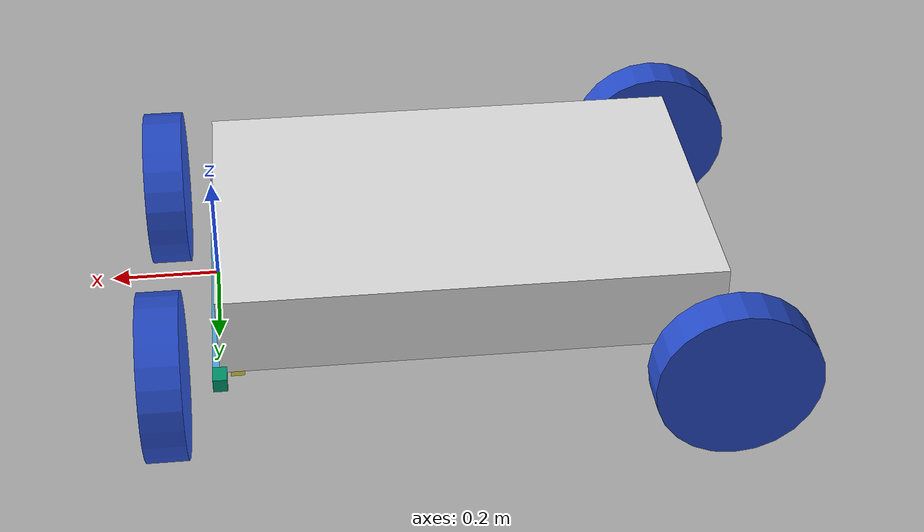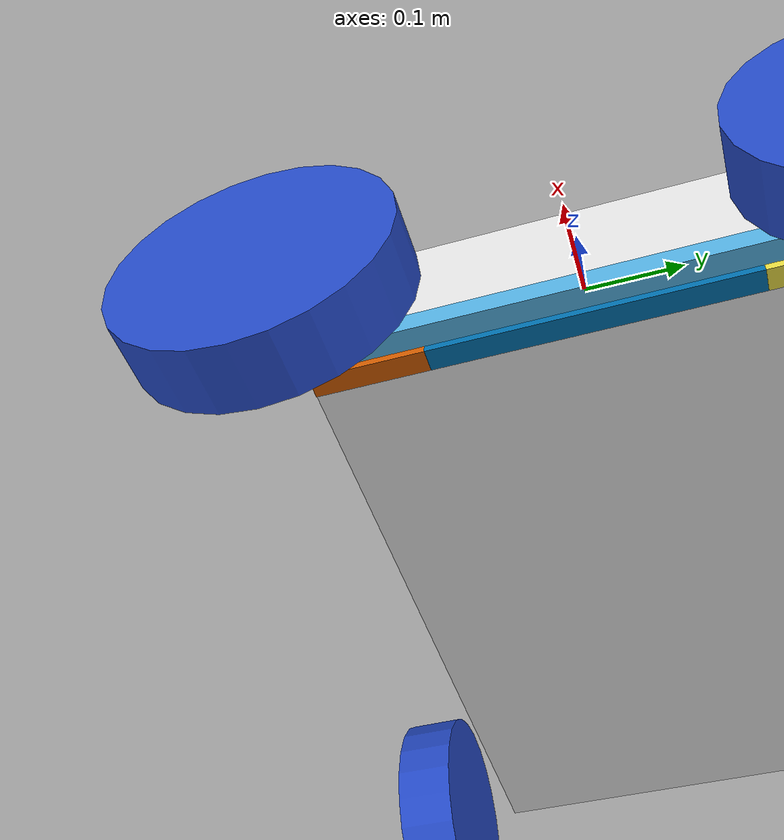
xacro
<?xml version="1.0"?>
<robot xmlns:xacro="http://www.ros.org/wiki/xacro" name="sarah7">

  <!-- ===== Macros ===== -->
  <xacro:include filename="macros/materials.xacro"/>

<link name="base_link"/>

<link name="frame">
    <visual>
        <geometry>
            <box size="0.0254 0.6096 0.0254"/>
        </geometry>
    </visual>

</link>

<joint name="frame_joint" type="fixed">
    <origin xyz="0.0 0.0 0.0"/>
    <parent link="base_link"/>
    <child link="frame"/>
</joint>

<link name="left_steering_arm">
    <visual>
        <origin xyz="0.0 0.01905 0.0"/>
        <geometry>
            <box size="0.0254 0.0381 0.0254"/>
        </geometry>

    </visual>
</link>

<joint name="pin_one" type="continuous">
    <origin xyz="0.0 0.3045 0.0"/>
    <parent link="frame"/>
    <child link="left_steering_arm"/>
    <axis xyz="0.0 0.0 1.0"/>
</joint>

<link name="left_tie_rod">
    <visual>
        <origin xyz="0.0 0.0635 0.0"/>
        <geometry>
            <box size="0.0254 0.127 0.0254"/>
        </geometry>
    </visual>
</link>

<joint name="pin_two" type="continuous">
    <origin xyz="0.0 0.1737 0.0"/>
    <parent link="rack"/>
    <child link="left_tie_rod"/>
    <axis xyz="0.0 0.0 1.0"/>

</joint>

<link name="rack">
    <visual>
        <origin xyz="0.0 0.0 0.0"/>
        <geometry>
            <box size="0.0254 0.347472 0.0254"/>
        </geometry>
    </visual>
</link>

<joint name="rack_joint" type="prismatic">
    <origin xyz="-0.0315 0.0 0.0"/>
    <parent link="base_link"/>
    <child link="rack"/>
    <axis xyz="0.0 1.0 0.0"/>
    <limit lower="-0.03021" upper="0.03021" effort="0.0" velocity="0.0"/>
</joint>

<link name="right_tie_rod">
    <visual>
        <origin xyz="0.0 -0.0635 0.0"/>
        <geometry>
            <box size="0.0254 0.127 0.0254"/>
        </geometry>
    </visual>
</link>

<joint name="pin_three" type="continuous">
    <origin xyz="0.0 -0.1737 0.0"/>
    <parent link="rack"/>
    <child link="right_tie_rod"/>
    <axis xyz="0.0 0.0 1.0"/>
</joint>

<link name="right_steering_arm">
    <visual>
        <origin xyz="0.0 -0.01905 0.0"/>
        <geometry>
            <box size="0.0254 0.0381 0.0254"/>
        </geometry>

    </visual>
</link>

<joint name="pin_four" type="continuous">
    <origin xyz="0.0 -0.3045 0.0"/>
    <parent link="frame"/>
    <child link="right_steering_arm"/>
    <axis xyz="0.0 0.0 1.0"/>
</joint>

<link name="pinion">
    <visual>
        <origin xyz="0.0 0.0 0.0"/>
        <geometry>
            <cylinder radius="0.0381" length="0.0254"/>
        </geometry>
      <material name="black"/>
    </visual>

</link>

<joint name="pinion_joint" type="revolute">
    <origin xyz="-0.0315 0.0 0.04445" rpy="0.0 ${pi/2} 0.0"/>
    <parent link="base_link"/>
    <child link="pinion"/>
    <axis xyz="0.0 0.0 1.0"/>
    <limit lower="-1.586" upper="1.586" effort="0.0" velocity="0.0"/>
</joint>

<link name="lf_wheel">
  <visual>
    <geometry>
      <cylinder radius="0.1524" length="0.0762"/>
    </geometry>
      <material name="blue"/>
  </visual>
</link>

<link name="rf_wheel">
  <visual>
    <geometry>
      <cylinder radius="0.1524" length="0.0762"/>
    </geometry>
      <material name="blue"/>
  </visual>
</link>

<joint name="lf_wjoint" type="fixed">
  <parent link="left_steering_arm"/>
  <child link="lf_wheel"/>
  <origin xyz="0.1 0.0 0.0" rpy="0.0 -1.57 0.0"/>
</joint>

<joint name="rf_wjoint" type="fixed">
  <parent link="right_steering_arm"/>
  <child link="rf_wheel"/>
  <origin xyz="0.1 0.0 0.0" rpy="0.0 -1.57 0.0"/>
</joint>

<link name="diff"></link>

<joint name="diff_j" type="fixed">
  <parent link="base_link"/>
  <child link="diff"/>
  <origin xyz="-0.9144 0.0 0.0"/>
</joint>

<link name="lr_wheel">
  <visual>
    <geometry>
      <cylinder radius="0.1524" length="0.0762"/>
    </geometry>
      <material name="blue"/>
  </visual>
</link>

<link name="rr_wheel">
  <visual>
    <geometry>
      <cylinder radius="0.1524" length="0.0762"/>
    </geometry>
      <material name="blue"/>
  </visual>
</link>

<joint name="lr_wjoint" type="fixed">
  <parent link="diff"/>
  <child link="lr_wheel"/>
  <origin xyz="0.0 0.4048 0.0" rpy="-1.57 0.0 0.0"/>
</joint>

<joint name="rr_wjoint" type="fixed">
  <parent link="diff"/>
  <child link="rr_wheel"/>
  <origin xyz="0.0 -0.4048 0.0" rpy="-1.57 0.0 0.0"/>
</joint>

  <!-- ===== CHASSIS ===== -->
  <link name="chassis_link">
    <visual>
      <geometry>
        <box size="0.9144 0.6096 0.1524"/>
      </geometry>
      <material name="white"/>
    </visual>
  </link>

  <joint name="chassis_joint" type="fixed">
    <parent link="base_link"/>
    <child link="chassis_link"/>
    <origin xyz="-0.4572 0.0 0.0762"/>
  </joint>

</robot>
